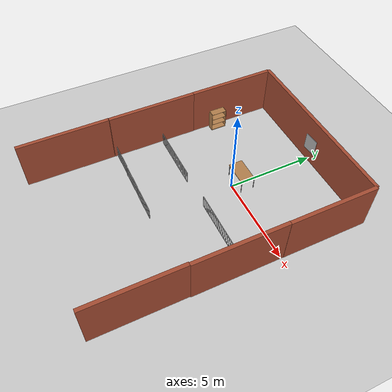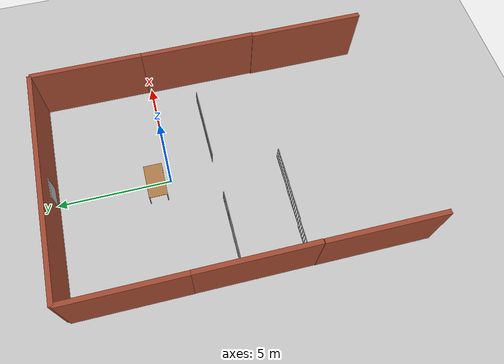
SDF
<sdf version="1.7">
 <world name="default">
  <light name="sun" type="directional">
   <pose>0 0 10 0 -0 0</pose>
   <diffuse>0.8 0.8 0.8 1</diffuse>
   <specular>0.2 0.2 0.2 1</specular>
   <attenuation>
    <range>1000</range>
    <constant>0.9</constant>
    <linear>0.01</linear>
    <quadratic>0.001</quadratic>
   </attenuation>
   <direction>-0.5 0.1 -0.9</direction>
   <spot><inner_angle>0</inner_angle><outer_angle>0</outer_angle><falloff>0</falloff></spot>
  </light>
  <model name="ground_plane">
   <static>1</static>
   <link name="link">
    <collision name="collision">
     <geometry><plane><normal>0 0 1</normal><size>100 100</size></plane></geometry>
     <surface>
      <contact><collide_bitmask>65535</collide_bitmask></contact>
      <friction><ode><mu>100</mu><mu2>50</mu2></ode></friction>
     </surface>
    </collision>
    <visual name="visual">
     <cast_shadows>0</cast_shadows>
     <geometry><plane><normal>0 0 1</normal><size>100 100</size></plane></geometry>
     <material>
      <script><uri>file://media/materials/scripts/gazebo.material</uri><name>Gazebo/Grey</name></script>
     </material>
    </visual>
   </link>
  </model>
  <gravity>0 0 -9.8</gravity>
  <magnetic_field>6e-06 2.3e-05 -4.2e-05</magnetic_field>
  <atmosphere type="adiabatic"/>
  <physics name="default_physics" default="0" type="ode">
   <max_step_size>0.001</max_step_size>
   <real_time_factor>1</real_time_factor>
   <real_time_update_rate>1000</real_time_update_rate>
  </physics>
  <scene><ambient>0.4 0.4 0.4 1</ambient><background>0.7 0.7 0.7 1</background><shadows>1</shadows></scene>
  <audio><device>default</device></audio>
  <spherical_coordinates>
   <surface_model>EARTH_WGS84</surface_model>
   <latitude_deg>0</latitude_deg>
   <longitude_deg>0</longitude_deg>
   <elevation>0</elevation>
   <heading_deg>0</heading_deg>
  </spherical_coordinates>
  <model name="table_clone">
   <static>1</static>
   <link name="link">
    <collision name="surface">
     <pose>0 0 1 0 -0 0</pose>
     <geometry><box><size>1.5 0.8 0.03</size></box></geometry>
     <surface><friction><ode><mu>0.6</mu><mu2>0.6</mu2></ode></friction></surface>
    </collision>
    <visual name="visual1">
     <pose>0 0 1 0 -0 0</pose>
     <geometry><box><size>1.5 0.8 0.03</size></box></geometry>
     <material>
      <script><uri>file://media/materials/scripts/gazebo.material</uri><name>Gazebo/Wood</name></script>
     </material>
    </visual>
    <collision name="front_left_leg">
     <pose>0.68 0.38 0.5 0 -0 0</pose>
     <geometry><cylinder><radius>0.02</radius><length>1</length></cylinder></geometry>
    </collision>
    <visual name="front_left_leg">
     <pose>0.68 0.38 0.5 0 -0 0</pose>
     <geometry><cylinder><radius>0.02</radius><length>1</length></cylinder></geometry>
     <material>
      <script><uri>file://media/materials/scripts/gazebo.material</uri><name>Gazebo/Grey</name></script>
     </material>
    </visual>
    <collision name="front_right_leg">
     <pose>0.68 -0.38 0.5 0 -0 0</pose>
     <geometry><cylinder><radius>0.02</radius><length>1</length></cylinder></geometry>
    </collision>
    <visual name="front_right_leg">
     <pose>0.68 -0.38 0.5 0 -0 0</pose>
     <geometry><cylinder><radius>0.02</radius><length>1</length></cylinder></geometry>
     <material>
      <script><uri>file://media/materials/scripts/gazebo.material</uri><name>Gazebo/Grey</name></script>
     </material>
    </visual>
    <collision name="back_right_leg">
     <pose>-0.68 -0.38 0.5 0 -0 0</pose>
     <geometry><cylinder><radius>0.02</radius><length>1</length></cylinder></geometry>
    </collision>
    <visual name="back_right_leg">
     <pose>-0.68 -0.38 0.5 0 -0 0</pose>
     <geometry><cylinder><radius>0.02</radius><length>1</length></cylinder></geometry>
     <material>
      <script><uri>file://media/materials/scripts/gazebo.material</uri><name>Gazebo/Grey</name></script>
     </material>
    </visual>
    <collision name="back_left_leg">
     <pose>-0.68 0.38 0.5 0 -0 0</pose>
     <geometry><cylinder><radius>0.02</radius><length>1</length></cylinder></geometry>
    </collision>
    <visual name="back_left_leg">
     <pose>-0.68 0.38 0.5 0 -0 0</pose>
     <geometry><cylinder><radius>0.02</radius><length>1</length></cylinder></geometry>
     <material>
      <script><uri>file://media/materials/scripts/gazebo.material</uri><name>Gazebo/Grey</name></script>
     </material>
    </visual>
   </link>
   <pose>-0.109742 0.658904 -0.245542 0 -0 0</pose>
  </model>
  <model name="parede_norte">
   <static>1</static>
   <pose>0 5 1.4 0 -0 0</pose>
   <link name="link">
    <collision name="collision"><geometry><box><size>10 0.2 2.8</size></box></geometry></collision>
    <visual name="visual">
     <geometry><box><size>10 0.2 2.8</size></box></geometry>
     <material>
      <script><uri>file://media/materials/scripts/gazebo.material</uri><name>Gazebo/Bricks</name></script>
     </material>
    </visual>
   </link>
  </model>
  <model name="parede_leste">
   <static>1</static>
   <pose>5.00025 2.56159 1.4 0 -0 1.5707</pose>
   <link name="link">
    <collision name="collision"><geometry><box><size>4.86735 0.2 2.8</size></box></geometry></collision>
    <visual name="visual">
     <geometry><box><size>4.86735 0.2 2.8</size></box></geometry>
     <material>
      <script><uri>file://media/materials/scripts/gazebo.material</uri><name>Gazebo/Bricks</name></script>
     </material>
    </visual>
   </link>
  </model>
  <model name="parede_oeste">
   <static>1</static>
   <pose>-4.96357 2.50093 1.4 0 -0 1.5707</pose>
   <link name="link">
    <collision name="collision"><geometry><box><size>4.96352 0.2 2.8</size></box></geometry></collision>
    <visual name="visual">
     <geometry><box><size>4.96352 0.2 2.8</size></box></geometry>
     <material>
      <script><uri>file://media/materials/scripts/gazebo.material</uri><name>Gazebo/Bricks</name></script>
     </material>
    </visual>
   </link>
  </model>
  <model name="prateleira_1">
   <static>1</static>
   <link name="link">
    <inertial><mass>1</mass></inertial>
    <collision name="back">
     <pose>0 0.005 0.6 0 -0 0</pose>
     <geometry><box><size>0.9 0.01 1.2</size></box></geometry>
    </collision>
    <visual name="visual1">
     <pose>0 0.005 0.6 0 -0 0</pose>
     <geometry><box><size>0.9 0.01 1.2</size></box></geometry>
     <material>
      <script><uri>file://media/materials/scripts/gazebo.material</uri><name>Gazebo/Wood</name></script>
     </material>
    </visual>
    <collision name="left_side">
     <pose>0.45 -0.195 0.6 0 -0 0</pose>
     <geometry><box><size>0.02 0.4 1.2</size></box></geometry>
    </collision>
    <visual name="visual2">
     <pose>0.45 -0.195 0.6 0 -0 0</pose>
     <geometry><box><size>0.02 0.4 1.2</size></box></geometry>
     <material>
      <script><uri>file://media/materials/scripts/gazebo.material</uri><name>Gazebo/Wood</name></script>
     </material>
    </visual>
    <collision name="right_side">
     <pose>-0.45 -0.195 0.6 0 -0 0</pose>
     <geometry><box><size>0.02 0.4 1.2</size></box></geometry>
    </collision>
    <visual name="visual3">
     <pose>-0.45 -0.195 0.6 0 -0 0</pose>
     <geometry><box><size>0.02 0.4 1.2</size></box></geometry>
     <material>
      <script><uri>file://media/materials/scripts/gazebo.material</uri><name>Gazebo/Wood</name></script>
     </material>
    </visual>
    <collision name="bottom">
     <pose>0 -0.195 0.03 0 -0 0</pose>
     <geometry><box><size>0.88 0.4 0.06</size></box></geometry>
    </collision>
    <visual name="visual4">
     <pose>0 -0.195 0.03 0 -0 0</pose>
     <geometry><box><size>0.88 0.4 0.06</size></box></geometry>
     <material>
      <script><uri>file://media/materials/scripts/gazebo.material</uri><name>Gazebo/Wood</name></script>
     </material>
    </visual>
    <collision name="top">
     <pose>0 -0.195 1.19 0 -0 0</pose>
     <geometry><box><size>0.88 0.4 0.02</size></box></geometry>
    </collision>
    <visual name="visual5">
     <pose>0 -0.195 1.19 0 -0 0</pose>
     <geometry><box><size>0.88 0.4 0.02</size></box></geometry>
     <material>
      <script><uri>file://media/materials/scripts/gazebo.material</uri><name>Gazebo/Wood</name></script>
     </material>
    </visual>
    <collision name="low_shelf">
     <pose>0 -0.195 0.43 0 -0 0</pose>
     <geometry><box><size>0.88 0.4 0.02</size></box></geometry>
    </collision>
    <visual name="visual6">
     <pose>0 -0.195 0.43 0 -0 0</pose>
     <geometry><box><size>0.88 0.4 0.02</size></box></geometry>
     <material>
      <script><uri>file://media/materials/scripts/gazebo.material</uri><name>Gazebo/Wood</name></script>
     </material>
    </visual>
    <collision name="high_shelf">
     <pose>0 -0.195 0.8 0 -0 0</pose>
     <geometry><box><size>0.88 0.4 0.02</size></box></geometry>
    </collision>
    <visual name="visual7">
     <pose>0 -0.195 0.8 0 -0 0</pose>
     <geometry><box><size>0.88 0.4 0.02</size></box></geometry>
     <material>
      <script><uri>file://media/materials/scripts/gazebo.material</uri><name>Gazebo/Wood</name></script>
     </material>
    </visual>
   </link>
   <pose>-4.80879 1.50006 0 0 -0 1.5707</pose>
  </model>
  <model name="makerspet_poster">
   <link name="link">
    <visual name="visual">
     <geometry><box><size>0.03 0.85714 1</size></box></geometry>
     <material>
      <script>
       <uri>https://fuel.ignitionrobotics.org/1.0/makerspet/models/makerspet_poster/1/files/material/script</uri>
       <uri>https://fuel.ignitionrobotics.org/1.0/makerspet/models/makerspet_poster/1/files/material/textures</uri>
       <name>Custom/makerspet</name>
      </script>
     </material>
    </visual>
   </link>
   <static>1</static>
   <pose>0.091416 4.86078 1.23081 0 0 -1.51214</pose>
  </model>
  <model name="pet_gate_wide">
   <static>1</static>
   <link name="link">
    <collision name="bar1_collision">
     <pose>0 0 0.381 0 -0 0</pose>
     <geometry><box><size>0.0254 0.0254 0.7366</size></box></geometry>
    </collision>
    <visual name="bar1_visual">
     <pose>0 0 0.381 0 -0 0</pose>
     <geometry><box><size>0.0254 0.0254 0.7366</size></box></geometry>
     <material>
      <script><uri>file://media/materials/scripts/gazebo.material</uri><name>Gazebo/Grey</name></script>
     </material>
    </visual>
    <collision name="bar2_collision">
     <pose>0.1651 0 0.381 0 -0 0</pose>
     <geometry><box><size>0.0254 0.0254 0.7366</size></box></geometry>
    </collision>
    <visual name="bar2_visual">
     <pose>0.1651 0 0.381 0 -0 0</pose>
     <geometry><box><size>0.0254 0.0254 0.7366</size></box></geometry>
     <material>
      <script><uri>file://media/materials/scripts/gazebo.material</uri><name>Gazebo/Grey</name></script>
     </material>
    </visual>
    <collision name="bar3_collision">
     <pose>0.3302 0 0.381 0 -0 0</pose>
     <geometry><box><size>0.0254 0.0254 0.7366</size></box></geometry>
    </collision>
    <visual name="bar3_visual">
     <pose>0.3302 0 0.381 0 -0 0</pose>
     <geometry><box><size>0.0254 0.0254 0.7366</size></box></geometry>
     <material>
      <script><uri>file://media/materials/scripts/gazebo.material</uri><name>Gazebo/Grey</name></script>
     </material>
    </visual>
    <collision name="bar4_collision">
     <pose>0.4953 0 0.381 0 -0 0</pose>
     <geometry><box><size>0.0254 0.0254 0.7366</size></box></geometry>
    </collision>
    <visual name="bar4_visual">
     <pose>0.4953 0 0.381 0 -0 0</pose>
     <geometry><box><size>0.0254 0.0254 0.7366</size></box></geometry>
     <material>
      <script><uri>file://media/materials/scripts/gazebo.material</uri><name>Gazebo/Grey</name></script>
     </material>
    </visual>
    <collision name="bar5_collision">
     <pose>0.6604 0 0.381 0 -0 0</pose>
     <geometry><box><size>0.0254 0.0254 0.7366</size></box></geometry>
    </collision>
    <visual name="bar5_visual">
     <pose>0.6604 0 0.381 0 -0 0</pose>
     <geometry><box><size>0.0254 0.0254 0.7366</size></box></geometry>
     <material>
      <script><uri>file://media/materials/scripts/gazebo.material</uri><name>Gazebo/Grey</name></script>
     </material>
    </visual>
    <collision name="bar6_collision">
     <pose>0.8255 0 0.381 0 -0 0</pose>
     <geometry><box><size>0.0254 0.0254 0.7366</size></box></geometry>
    </collision>
    <visual name="bar6_visual">
     <pose>0.8255 0 0.381 0 -0 0</pose>
     <geometry><box><size>0.0254 0.0254 0.7366</size></box></geometry>
     <material>
      <script><uri>file://media/materials/scripts/gazebo.material</uri><name>Gazebo/Grey</name></script>
     </material>
    </visual>
    <collision name="bar7_collision">
     <pose>0.9906 0 0.381 0 -0 0</pose>
     <geometry><box><size>0.0254 0.0254 0.7366</size></box></geometry>
    </collision>
    <visual name="bar7_visual">
     <pose>0.9906 0 0.381 0 -0 0</pose>
     <geometry><box><size>0.0254 0.0254 0.7366</size></box></geometry>
     <material>
      <script><uri>file://media/materials/scripts/gazebo.material</uri><name>Gazebo/Grey</name></script>
     </material>
    </visual>
    <collision name="bar8_collision">
     <pose>1.1557 0 0.381 0 -0 0</pose>
     <geometry><box><size>0.0254 0.0254 0.7366</size></box></geometry>
    </collision>
    <visual name="bar8_visual">
     <pose>1.1557 0 0.381 0 -0 0</pose>
     <geometry><box><size>0.0254 0.0254 0.7366</size></box></geometry>
     <material>
      <script><uri>file://media/materials/scripts/gazebo.material</uri><name>Gazebo/Grey</name></script>
     </material>
    </visual>
    <collision name="bar9_collision">
     <pose>1.3208 0 0.381 0 -0 0</pose>
     <geometry><box><size>0.0254 0.0254 0.7366</size></box></geometry>
    </collision>
    <visual name="bar9_visual">
     <pose>1.3208 0 0.381 0 -0 0</pose>
     <geometry><box><size>0.0254 0.0254 0.7366</size></box></geometry>
     <material>
      <script><uri>file://media/materials/scripts/gazebo.material</uri><name>Gazebo/Grey</name></script>
     </material>
    </visual>
    <collision name="bar10_collision">
     <pose>1.4859 0 0.381 0 -0 0</pose>
     <geometry><box><size>0.0254 0.0254 0.7366</size></box></geometry>
    </collision>
    <visual name="bar10_visual">
     <pose>1.4859 0 0.381 0 -0 0</pose>
     <geometry><box><size>0.0254 0.0254 0.7366</size></box></geometry>
     <material>
      <script><uri>file://media/materials/scripts/gazebo.material</uri><name>Gazebo/Grey</name></script>
     </material>
    </visual>
    <collision name="bar11_collision">
     <pose>1.651 0 0.381 0 -0 0</pose>
     <geometry><box><size>0.0254 0.0254 0.7366</size></box></geometry>
    </collision>
    <visual name="bar11_visual">
     <pose>1.651 0 0.381 0 -0 0</pose>
     <geometry><box><size>0.0254 0.0254 0.7366</size></box></geometry>
     <material>
      <script><uri>file://media/materials/scripts/gazebo.material</uri><name>Gazebo/Grey</name></script>
     </material>
    </visual>
    <collision name="top_rail_collision">
     <pose>0.8255 0 0.7493 0 -0 0</pose>
     <geometry><box><size>1.6764 0.0254 0.0254</size></box></geometry>
    </collision>
    <visual name="top_rail_visual">
     <pose>0.8255 0 0.7493 0 -0 0</pose>
     <geometry><box><size>1.6764 0.0254 0.0254</size></box></geometry>
     <material>
      <script><uri>file://media/materials/scripts/gazebo.material</uri><name>Gazebo/Grey</name></script>
     </material>
    </visual>
    <collision name="bottom_rail_collision">
     <pose>0.8255 0 0.0127 0 -0 0</pose>
     <geometry><box><size>1.6764 0.0254 0.0254</size></box></geometry>
    </collision>
    <visual name="bottom_rail_visual">
     <pose>0.8255 0 0.0127 0 -0 0</pose>
     <geometry><box><size>1.6764 0.0254 0.0254</size></box></geometry>
     <material>
      <script><uri>file://media/materials/scripts/gazebo.material</uri><name>Gazebo/Grey</name></script>
     </material>
    </visual>
   </link>
   <pose>-4.8961 -4.83545 0 0 -0 0</pose>
  </model>
  <model name="pet_gate_wide_clone">
   <static>1</static>
   <link name="link">
    <collision name="bar1_collision">
     <pose>0 0 0.381 0 -0 0</pose>
     <geometry><box><size>0.0254 0.0254 0.7366</size></box></geometry>
    </collision>
    <visual name="bar1_visual">
     <pose>0 0 0.381 0 -0 0</pose>
     <geometry><box><size>0.0254 0.0254 0.7366</size></box></geometry>
     <material>
      <script><uri>file://media/materials/scripts/gazebo.material</uri><name>Gazebo/Grey</name></script>
     </material>
    </visual>
    <collision name="bar2_collision">
     <pose>0.1651 0 0.381 0 -0 0</pose>
     <geometry><box><size>0.0254 0.0254 0.7366</size></box></geometry>
    </collision>
    <visual name="bar2_visual">
     <pose>0.1651 0 0.381 0 -0 0</pose>
     <geometry><box><size>0.0254 0.0254 0.7366</size></box></geometry>
     <material>
      <script><uri>file://media/materials/scripts/gazebo.material</uri><name>Gazebo/Grey</name></script>
     </material>
    </visual>
    <collision name="bar3_collision">
     <pose>0.3302 0 0.381 0 -0 0</pose>
     <geometry><box><size>0.0254 0.0254 0.7366</size></box></geometry>
    </collision>
    <visual name="bar3_visual">
     <pose>0.3302 0 0.381 0 -0 0</pose>
     <geometry><box><size>0.0254 0.0254 0.7366</size></box></geometry>
     <material>
      <script><uri>file://media/materials/scripts/gazebo.material</uri><name>Gazebo/Grey</name></script>
     </material>
    </visual>
    <collision name="bar4_collision">
     <pose>0.4953 0 0.381 0 -0 0</pose>
     <geometry><box><size>0.0254 0.0254 0.7366</size></box></geometry>
    </collision>
    <visual name="bar4_visual">
     <pose>0.4953 0 0.381 0 -0 0</pose>
     <geometry><box><size>0.0254 0.0254 0.7366</size></box></geometry>
     <material>
      <script><uri>file://media/materials/scripts/gazebo.material</uri><name>Gazebo/Grey</name></script>
     </material>
    </visual>
    <collision name="bar5_collision">
     <pose>0.6604 0 0.381 0 -0 0</pose>
     <geometry><box><size>0.0254 0.0254 0.7366</size></box></geometry>
    </collision>
    <visual name="bar5_visual">
     <pose>0.6604 0 0.381 0 -0 0</pose>
     <geometry><box><size>0.0254 0.0254 0.7366</size></box></geometry>
     <material>
      <script><uri>file://media/materials/scripts/gazebo.material</uri><name>Gazebo/Grey</name></script>
     </material>
    </visual>
    <collision name="bar6_collision">
     <pose>0.8255 0 0.381 0 -0 0</pose>
     <geometry><box><size>0.0254 0.0254 0.7366</size></box></geometry>
    </collision>
    <visual name="bar6_visual">
     <pose>0.8255 0 0.381 0 -0 0</pose>
     <geometry><box><size>0.0254 0.0254 0.7366</size></box></geometry>
     <material>
      <script><uri>file://media/materials/scripts/gazebo.material</uri><name>Gazebo/Grey</name></script>
     </material>
    </visual>
    <collision name="bar7_collision">
     <pose>0.9906 0 0.381 0 -0 0</pose>
     <geometry><box><size>0.0254 0.0254 0.7366</size></box></geometry>
    </collision>
    <visual name="bar7_visual">
     <pose>0.9906 0 0.381 0 -0 0</pose>
     <geometry><box><size>0.0254 0.0254 0.7366</size></box></geometry>
     <material>
      <script><uri>file://media/materials/scripts/gazebo.material</uri><name>Gazebo/Grey</name></script>
     </material>
    </visual>
    <collision name="bar8_collision">
     <pose>1.1557 0 0.381 0 -0 0</pose>
     <geometry><box><size>0.0254 0.0254 0.7366</size></box></geometry>
    </collision>
    <visual name="bar8_visual">
     <pose>1.1557 0 0.381 0 -0 0</pose>
     <geometry><box><size>0.0254 0.0254 0.7366</size></box></geometry>
     <material>
      <script><uri>file://media/materials/scripts/gazebo.material</uri><name>Gazebo/Grey</name></script>
     </material>
    </visual>
    <collision name="bar9_collision">
     <pose>1.3208 0 0.381 0 -0 0</pose>
     <geometry><box><size>0.0254 0.0254 0.7366</size></box></geometry>
    </collision>
    <visual name="bar9_visual">
     <pose>1.3208 0 0.381 0 -0 0</pose>
     <geometry><box><size>0.0254 0.0254 0.7366</size></box></geometry>
     <material>
      <script><uri>file://media/materials/scripts/gazebo.material</uri><name>Gazebo/Grey</name></script>
     </material>
    </visual>
    <collision name="bar10_collision">
     <pose>1.4859 0 0.381 0 -0 0</pose>
     <geometry><box><size>0.0254 0.0254 0.7366</size></box></geometry>
    </collision>
    <visual name="bar10_visual">
     <pose>1.4859 0 0.381 0 -0 0</pose>
     <geometry><box><size>0.0254 0.0254 0.7366</size></box></geometry>
     <material>
      <script><uri>file://media/materials/scripts/gazebo.material</uri><name>Gazebo/Grey</name></script>
     </material>
    </visual>
    <collision name="bar11_collision">
     <pose>1.651 0 0.381 0 -0 0</pose>
     <geometry><box><size>0.0254 0.0254 0.7366</size></box></geometry>
    </collision>
    <visual name="bar11_visual">
     <pose>1.651 0 0.381 0 -0 0</pose>
     <geometry><box><size>0.0254 0.0254 0.7366</size></box></geometry>
     <material>
      <script><uri>file://media/materials/scripts/gazebo.material</uri><name>Gazebo/Grey</name></script>
     </material>
    </visual>
    <collision name="top_rail_collision">
     <pose>0.8255 0 0.7493 0 -0 0</pose>
     <geometry><box><size>1.6764 0.0254 0.0254</size></box></geometry>
    </collision>
    <visual name="top_rail_visual">
     <pose>0.8255 0 0.7493 0 -0 0</pose>
     <geometry><box><size>1.6764 0.0254 0.0254</size></box></geometry>
     <material>
      <script><uri>file://media/materials/scripts/gazebo.material</uri><name>Gazebo/Grey</name></script>
     </material>
    </visual>
    <collision name="bottom_rail_collision">
     <pose>0.8255 0 0.0127 0 -0 0</pose>
     <geometry><box><size>1.6764 0.0254 0.0254</size></box></geometry>
    </collision>
    <visual name="bottom_rail_visual">
     <pose>0.8255 0 0.0127 0 -0 0</pose>
     <geometry><box><size>1.6764 0.0254 0.0254</size></box></geometry>
     <material>
      <script><uri>file://media/materials/scripts/gazebo.material</uri><name>Gazebo/Grey</name></script>
     </material>
    </visual>
   </link>
   <pose>-3.22047 -4.86226 0 0 -0 0</pose>
  </model>
  <model name="pet_gate_wide_clone_clone">
   <static>1</static>
   <link name="link">
    <collision name="bar1_collision">
     <pose>0 0 0.381 0 -0 0</pose>
     <geometry><box><size>0.0254 0.0254 0.7366</size></box></geometry>
    </collision>
    <visual name="bar1_visual">
     <pose>0 0 0.381 0 -0 0</pose>
     <geometry><box><size>0.0254 0.0254 0.7366</size></box></geometry>
     <material>
      <script><uri>file://media/materials/scripts/gazebo.material</uri><name>Gazebo/Grey</name></script>
     </material>
    </visual>
    <collision name="bar2_collision">
     <pose>0.1651 0 0.381 0 -0 0</pose>
     <geometry><box><size>0.0254 0.0254 0.7366</size></box></geometry>
    </collision>
    <visual name="bar2_visual">
     <pose>0.1651 0 0.381 0 -0 0</pose>
     <geometry><box><size>0.0254 0.0254 0.7366</size></box></geometry>
     <material>
      <script><uri>file://media/materials/scripts/gazebo.material</uri><name>Gazebo/Grey</name></script>
     </material>
    </visual>
    <collision name="bar3_collision">
     <pose>0.3302 0 0.381 0 -0 0</pose>
     <geometry><box><size>0.0254 0.0254 0.7366</size></box></geometry>
    </collision>
    <visual name="bar3_visual">
     <pose>0.3302 0 0.381 0 -0 0</pose>
     <geometry><box><size>0.0254 0.0254 0.7366</size></box></geometry>
     <material>
      <script><uri>file://media/materials/scripts/gazebo.material</uri><name>Gazebo/Grey</name></script>
     </material>
    </visual>
    <collision name="bar4_collision">
     <pose>0.4953 0 0.381 0 -0 0</pose>
     <geometry><box><size>0.0254 0.0254 0.7366</size></box></geometry>
    </collision>
    <visual name="bar4_visual">
     <pose>0.4953 0 0.381 0 -0 0</pose>
     <geometry><box><size>0.0254 0.0254 0.7366</size></box></geometry>
     <material>
      <script><uri>file://media/materials/scripts/gazebo.material</uri><name>Gazebo/Grey</name></script>
     </material>
    </visual>
    <collision name="bar5_collision">
     <pose>0.6604 0 0.381 0 -0 0</pose>
     <geometry><box><size>0.0254 0.0254 0.7366</size></box></geometry>
    </collision>
    <visual name="bar5_visual">
     <pose>0.6604 0 0.381 0 -0 0</pose>
     <geometry><box><size>0.0254 0.0254 0.7366</size></box></geometry>
     <material>
      <script><uri>file://media/materials/scripts/gazebo.material</uri><name>Gazebo/Grey</name></script>
     </material>
    </visual>
    <collision name="bar6_collision">
     <pose>0.8255 0 0.381 0 -0 0</pose>
     <geometry><box><size>0.0254 0.0254 0.7366</size></box></geometry>
    </collision>
    <visual name="bar6_visual">
     <pose>0.8255 0 0.381 0 -0 0</pose>
     <geometry><box><size>0.0254 0.0254 0.7366</size></box></geometry>
     <material>
      <script><uri>file://media/materials/scripts/gazebo.material</uri><name>Gazebo/Grey</name></script>
     </material>
    </visual>
    <collision name="bar7_collision">
     <pose>0.9906 0 0.381 0 -0 0</pose>
     <geometry><box><size>0.0254 0.0254 0.7366</size></box></geometry>
    </collision>
    <visual name="bar7_visual">
     <pose>0.9906 0 0.381 0 -0 0</pose>
     <geometry><box><size>0.0254 0.0254 0.7366</size></box></geometry>
     <material>
      <script><uri>file://media/materials/scripts/gazebo.material</uri><name>Gazebo/Grey</name></script>
     </material>
    </visual>
    <collision name="bar8_collision">
     <pose>1.1557 0 0.381 0 -0 0</pose>
     <geometry><box><size>0.0254 0.0254 0.7366</size></box></geometry>
    </collision>
    <visual name="bar8_visual">
     <pose>1.1557 0 0.381 0 -0 0</pose>
     <geometry><box><size>0.0254 0.0254 0.7366</size></box></geometry>
     <material>
      <script><uri>file://media/materials/scripts/gazebo.material</uri><name>Gazebo/Grey</name></script>
     </material>
    </visual>
    <collision name="bar9_collision">
     <pose>1.3208 0 0.381 0 -0 0</pose>
     <geometry><box><size>0.0254 0.0254 0.7366</size></box></geometry>
    </collision>
    <visual name="bar9_visual">
     <pose>1.3208 0 0.381 0 -0 0</pose>
     <geometry><box><size>0.0254 0.0254 0.7366</size></box></geometry>
     <material>
      <script><uri>file://media/materials/scripts/gazebo.material</uri><name>Gazebo/Grey</name></script>
     </material>
    </visual>
    <collision name="bar10_collision">
     <pose>1.4859 0 0.381 0 -0 0</pose>
     <geometry><box><size>0.0254 0.0254 0.7366</size></box></geometry>
    </collision>
    <visual name="bar10_visual">
     <pose>1.4859 0 0.381 0 -0 0</pose>
     <geometry><box><size>0.0254 0.0254 0.7366</size></box></geometry>
     <material>
      <script><uri>file://media/materials/scripts/gazebo.material</uri><name>Gazebo/Grey</name></script>
     </material>
    </visual>
    <collision name="bar11_collision">
     <pose>1.651 0 0.381 0 -0 0</pose>
     <geometry><box><size>0.0254 0.0254 0.7366</size></box></geometry>
    </collision>
    <visual name="bar11_visual">
     <pose>1.651 0 0.381 0 -0 0</pose>
     <geometry><box><size>0.0254 0.0254 0.7366</size></box></geometry>
     <material>
      <script><uri>file://media/materials/scripts/gazebo.material</uri><name>Gazebo/Grey</name></script>
     </material>
    </visual>
    <collision name="top_rail_collision">
     <pose>0.8255 0 0.7493 0 -0 0</pose>
     <geometry><box><size>1.6764 0.0254 0.0254</size></box></geometry>
    </collision>
    <visual name="top_rail_visual">
     <pose>0.8255 0 0.7493 0 -0 0</pose>
     <geometry><box><size>1.6764 0.0254 0.0254</size></box></geometry>
     <material>
      <script><uri>file://media/materials/scripts/gazebo.material</uri><name>Gazebo/Grey</name></script>
     </material>
    </visual>
    <collision name="bottom_rail_collision">
     <pose>0.8255 0 0.0127 0 -0 0</pose>
     <geometry><box><size>1.6764 0.0254 0.0254</size></box></geometry>
    </collision>
    <visual name="bottom_rail_visual">
     <pose>0.8255 0 0.0127 0 -0 0</pose>
     <geometry><box><size>1.6764 0.0254 0.0254</size></box></geometry>
     <material>
      <script><uri>file://media/materials/scripts/gazebo.material</uri><name>Gazebo/Grey</name></script>
     </material>
    </visual>
   </link>
   <pose>-1.54169 -4.87926 0 0 -0 0</pose>
  </model>
  <model name="parede_oeste_clone">
   <static>1</static>
   <pose>-4.95911 -2.48321 1.4 0 -0 1.5707</pose>
   <link name="link">
    <collision name="collision"><geometry><box><size>5.02484 0.2 2.8</size></box></geometry></collision>
    <visual name="visual">
     <geometry><box><size>5.02484 0.2 2.8</size></box></geometry>
     <material>
      <script><uri>file://media/materials/scripts/gazebo.material</uri><name>Gazebo/Bricks</name></script>
     </material>
    </visual>
   </link>
  </model>
  <model name="parede_oeste_clone_0">
   <static>1</static>
   <pose>4.98739 -2.36882 1.4 0 -0 1.5707</pose>
   <link name="link">
    <collision name="collision"><geometry><box><size>5.02484 0.2 2.8</size></box></geometry></collision>
    <visual name="visual">
     <geometry><box><size>5.02484 0.2 2.8</size></box></geometry>
     <material>
      <script><uri>file://media/materials/scripts/gazebo.material</uri><name>Gazebo/Bricks</name></script>
     </material>
    </visual>
   </link>
  </model>
  <model name="parede_oeste_clone_clone">
   <static>1</static>
   <pose>-4.97065 -7.53243 1.4 0 -0 1.5707</pose>
   <link name="link">
    <collision name="collision"><geometry><box><size>5.02484 0.2 2.8</size></box></geometry></collision>
    <visual name="visual">
     <geometry><box><size>5.02484 0.2 2.8</size></box></geometry>
     <material>
      <script><uri>file://media/materials/scripts/gazebo.material</uri><name>Gazebo/Bricks</name></script>
     </material>
    </visual>
   </link>
  </model>
  <model name="parede_oeste_clone_0_clone">
   <static>1</static>
   <pose>4.95048 -7.39368 1.4 0 -0 1.5707</pose>
   <link name="link">
    <collision name="collision"><geometry><box><size>5.02484 0.2 2.8</size></box></geometry></collision>
    <visual name="visual">
     <geometry><box><size>5.02484 0.2 2.8</size></box></geometry>
     <material>
      <script><uri>file://media/materials/scripts/gazebo.material</uri><name>Gazebo/Bricks</name></script>
     </material>
    </visual>
   </link>
  </model>
  <model name="pet_gate_wide_clone_0">
   <static>1</static>
   <link name="link">
    <collision name="bar1_collision">
     <pose>0 0 0.381 0 -0 0</pose>
     <geometry><box><size>0.0254 0.0254 0.7366</size></box></geometry>
    </collision>
    <visual name="bar1_visual">
     <pose>0 0 0.381 0 -0 0</pose>
     <geometry><box><size>0.0254 0.0254 0.7366</size></box></geometry>
     <material>
      <script><uri>file://media/materials/scripts/gazebo.material</uri><name>Gazebo/Grey</name></script>
     </material>
    </visual>
    <collision name="bar2_collision">
     <pose>0.1651 0 0.381 0 -0 0</pose>
     <geometry><box><size>0.0254 0.0254 0.7366</size></box></geometry>
    </collision>
    <visual name="bar2_visual">
     <pose>0.1651 0 0.381 0 -0 0</pose>
     <geometry><box><size>0.0254 0.0254 0.7366</size></box></geometry>
     <material>
      <script><uri>file://media/materials/scripts/gazebo.material</uri><name>Gazebo/Grey</name></script>
     </material>
    </visual>
    <collision name="bar3_collision">
     <pose>0.3302 0 0.381 0 -0 0</pose>
     <geometry><box><size>0.0254 0.0254 0.7366</size></box></geometry>
    </collision>
    <visual name="bar3_visual">
     <pose>0.3302 0 0.381 0 -0 0</pose>
     <geometry><box><size>0.0254 0.0254 0.7366</size></box></geometry>
     <material>
      <script><uri>file://media/materials/scripts/gazebo.material</uri><name>Gazebo/Grey</name></script>
     </material>
    </visual>
    <collision name="bar4_collision">
     <pose>0.4953 0 0.381 0 -0 0</pose>
     <geometry><box><size>0.0254 0.0254 0.7366</size></box></geometry>
    </collision>
    <visual name="bar4_visual">
     <pose>0.4953 0 0.381 0 -0 0</pose>
     <geometry><box><size>0.0254 0.0254 0.7366</size></box></geometry>
     <material>
      <script><uri>file://media/materials/scripts/gazebo.material</uri><name>Gazebo/Grey</name></script>
     </material>
    </visual>
    <collision name="bar5_collision">
     <pose>0.6604 0 0.381 0 -0 0</pose>
     <geometry><box><size>0.0254 0.0254 0.7366</size></box></geometry>
    </collision>
    <visual name="bar5_visual">
     <pose>0.6604 0 0.381 0 -0 0</pose>
     <geometry><box><size>0.0254 0.0254 0.7366</size></box></geometry>
     <material>
      <script><uri>file://media/materials/scripts/gazebo.material</uri><name>Gazebo/Grey</name></script>
     </material>
    </visual>
    <collision name="bar6_collision">
     <pose>0.8255 0 0.381 0 -0 0</pose>
     <geometry><box><size>0.0254 0.0254 0.7366</size></box></geometry>
    </collision>
    <visual name="bar6_visual">
     <pose>0.8255 0 0.381 0 -0 0</pose>
     <geometry><box><size>0.0254 0.0254 0.7366</size></box></geometry>
     <material>
      <script><uri>file://media/materials/scripts/gazebo.material</uri><name>Gazebo/Grey</name></script>
     </material>
    </visual>
    <collision name="bar7_collision">
     <pose>0.9906 0 0.381 0 -0 0</pose>
     <geometry><box><size>0.0254 0.0254 0.7366</size></box></geometry>
    </collision>
    <visual name="bar7_visual">
     <pose>0.9906 0 0.381 0 -0 0</pose>
     <geometry><box><size>0.0254 0.0254 0.7366</size></box></geometry>
     <material>
      <script><uri>file://media/materials/scripts/gazebo.material</uri><name>Gazebo/Grey</name></script>
     </material>
    </visual>
    <collision name="bar8_collision">
     <pose>1.1557 0 0.381 0 -0 0</pose>
     <geometry><box><size>0.0254 0.0254 0.7366</size></box></geometry>
    </collision>
    <visual name="bar8_visual">
     <pose>1.1557 0 0.381 0 -0 0</pose>
     <geometry><box><size>0.0254 0.0254 0.7366</size></box></geometry>
     <material>
      <script><uri>file://media/materials/scripts/gazebo.material</uri><name>Gazebo/Grey</name></script>
     </material>
    </visual>
    <collision name="bar9_collision">
     <pose>1.3208 0 0.381 0 -0 0</pose>
     <geometry><box><size>0.0254 0.0254 0.7366</size></box></geometry>
    </collision>
    <visual name="bar9_visual">
     <pose>1.3208 0 0.381 0 -0 0</pose>
     <geometry><box><size>0.0254 0.0254 0.7366</size></box></geometry>
     <material>
      <script><uri>file://media/materials/scripts/gazebo.material</uri><name>Gazebo/Grey</name></script>
     </material>
    </visual>
    <collision name="bar10_collision">
     <pose>1.4859 0 0.381 0 -0 0</pose>
     <geometry><box><size>0.0254 0.0254 0.7366</size></box></geometry>
    </collision>
    <visual name="bar10_visual">
     <pose>1.4859 0 0.381 0 -0 0</pose>
     <geometry><box><size>0.0254 0.0254 0.7366</size></box></geometry>
     <material>
      <script><uri>file://media/materials/scripts/gazebo.material</uri><name>Gazebo/Grey</name></script>
     </material>
    </visual>
    <collision name="bar11_collision">
     <pose>1.651 0 0.381 0 -0 0</pose>
     <geometry><box><size>0.0254 0.0254 0.7366</size></box></geometry>
    </collision>
    <visual name="bar11_visual">
     <pose>1.651 0 0.381 0 -0 0</pose>
     <geometry><box><size>0.0254 0.0254 0.7366</size></box></geometry>
     <material>
      <script><uri>file://media/materials/scripts/gazebo.material</uri><name>Gazebo/Grey</name></script>
     </material>
    </visual>
    <collision name="top_rail_collision">
     <pose>0.8255 0 0.7493 0 -0 0</pose>
     <geometry><box><size>1.6764 0.0254 0.0254</size></box></geometry>
    </collision>
    <visual name="top_rail_visual">
     <pose>0.8255 0 0.7493 0 -0 0</pose>
     <geometry><box><size>1.6764 0.0254 0.0254</size></box></geometry>
     <material>
      <script><uri>file://media/materials/scripts/gazebo.material</uri><name>Gazebo/Grey</name></script>
     </material>
    </visual>
    <collision name="bottom_rail_collision">
     <pose>0.8255 0 0.0127 0 -0 0</pose>
     <geometry><box><size>1.6764 0.0254 0.0254</size></box></geometry>
    </collision>
    <visual name="bottom_rail_visual">
     <pose>0.8255 0 0.0127 0 -0 0</pose>
     <geometry><box><size>1.6764 0.0254 0.0254</size></box></geometry>
     <material>
      <script><uri>file://media/materials/scripts/gazebo.material</uri><name>Gazebo/Grey</name></script>
     </material>
    </visual>
   </link>
   <pose>-4.66801 -2.05183 0 0 -0 0</pose>
  </model>
  <model name="pet_gate_wide_clone_1">
   <static>1</static>
   <link name="link">
    <collision name="bar1_collision">
     <pose>0 0 0.381 0 -0 0</pose>
     <geometry><box><size>0.0254 0.0254 0.7366</size></box></geometry>
    </collision>
    <visual name="bar1_visual">
     <pose>0 0 0.381 0 -0 0</pose>
     <geometry><box><size>0.0254 0.0254 0.7366</size></box></geometry>
     <material>
      <script><uri>file://media/materials/scripts/gazebo.material</uri><name>Gazebo/Grey</name></script>
     </material>
    </visual>
    <collision name="bar2_collision">
     <pose>0.1651 0 0.381 0 -0 0</pose>
     <geometry><box><size>0.0254 0.0254 0.7366</size></box></geometry>
    </collision>
    <visual name="bar2_visual">
     <pose>0.1651 0 0.381 0 -0 0</pose>
     <geometry><box><size>0.0254 0.0254 0.7366</size></box></geometry>
     <material>
      <script><uri>file://media/materials/scripts/gazebo.material</uri><name>Gazebo/Grey</name></script>
     </material>
    </visual>
    <collision name="bar3_collision">
     <pose>0.3302 0 0.381 0 -0 0</pose>
     <geometry><box><size>0.0254 0.0254 0.7366</size></box></geometry>
    </collision>
    <visual name="bar3_visual">
     <pose>0.3302 0 0.381 0 -0 0</pose>
     <geometry><box><size>0.0254 0.0254 0.7366</size></box></geometry>
     <material>
      <script><uri>file://media/materials/scripts/gazebo.material</uri><name>Gazebo/Grey</name></script>
     </material>
    </visual>
    <collision name="bar4_collision">
     <pose>0.4953 0 0.381 0 -0 0</pose>
     <geometry><box><size>0.0254 0.0254 0.7366</size></box></geometry>
    </collision>
    <visual name="bar4_visual">
     <pose>0.4953 0 0.381 0 -0 0</pose>
     <geometry><box><size>0.0254 0.0254 0.7366</size></box></geometry>
     <material>
      <script><uri>file://media/materials/scripts/gazebo.material</uri><name>Gazebo/Grey</name></script>
     </material>
    </visual>
    <collision name="bar5_collision">
     <pose>0.6604 0 0.381 0 -0 0</pose>
     <geometry><box><size>0.0254 0.0254 0.7366</size></box></geometry>
    </collision>
    <visual name="bar5_visual">
     <pose>0.6604 0 0.381 0 -0 0</pose>
     <geometry><box><size>0.0254 0.0254 0.7366</size></box></geometry>
     <material>
      <script><uri>file://media/materials/scripts/gazebo.material</uri><name>Gazebo/Grey</name></script>
     </material>
    </visual>
    <collision name="bar6_collision">
     <pose>0.8255 0 0.381 0 -0 0</pose>
     <geometry><box><size>0.0254 0.0254 0.7366</size></box></geometry>
    </collision>
    <visual name="bar6_visual">
     <pose>0.8255 0 0.381 0 -0 0</pose>
     <geometry><box><size>0.0254 0.0254 0.7366</size></box></geometry>
     <material>
      <script><uri>file://media/materials/scripts/gazebo.material</uri><name>Gazebo/Grey</name></script>
     </material>
    </visual>
    <collision name="bar7_collision">
     <pose>0.9906 0 0.381 0 -0 0</pose>
     <geometry><box><size>0.0254 0.0254 0.7366</size></box></geometry>
    </collision>
    <visual name="bar7_visual">
     <pose>0.9906 0 0.381 0 -0 0</pose>
     <geometry><box><size>0.0254 0.0254 0.7366</size></box></geometry>
     <material>
      <script><uri>file://media/materials/scripts/gazebo.material</uri><name>Gazebo/Grey</name></script>
     </material>
    </visual>
    <collision name="bar8_collision">
     <pose>1.1557 0 0.381 0 -0 0</pose>
     <geometry><box><size>0.0254 0.0254 0.7366</size></box></geometry>
    </collision>
    <visual name="bar8_visual">
     <pose>1.1557 0 0.381 0 -0 0</pose>
     <geometry><box><size>0.0254 0.0254 0.7366</size></box></geometry>
     <material>
      <script><uri>file://media/materials/scripts/gazebo.material</uri><name>Gazebo/Grey</name></script>
     </material>
    </visual>
    <collision name="bar9_collision">
     <pose>1.3208 0 0.381 0 -0 0</pose>
     <geometry><box><size>0.0254 0.0254 0.7366</size></box></geometry>
    </collision>
    <visual name="bar9_visual">
     <pose>1.3208 0 0.381 0 -0 0</pose>
     <geometry><box><size>0.0254 0.0254 0.7366</size></box></geometry>
     <material>
      <script><uri>file://media/materials/scripts/gazebo.material</uri><name>Gazebo/Grey</name></script>
     </material>
    </visual>
    <collision name="bar10_collision">
     <pose>1.4859 0 0.381 0 -0 0</pose>
     <geometry><box><size>0.0254 0.0254 0.7366</size></box></geometry>
    </collision>
    <visual name="bar10_visual">
     <pose>1.4859 0 0.381 0 -0 0</pose>
     <geometry><box><size>0.0254 0.0254 0.7366</size></box></geometry>
     <material>
      <script><uri>file://media/materials/scripts/gazebo.material</uri><name>Gazebo/Grey</name></script>
     </material>
    </visual>
    <collision name="bar11_collision">
     <pose>1.651 0 0.381 0 -0 0</pose>
     <geometry><box><size>0.0254 0.0254 0.7366</size></box></geometry>
    </collision>
    <visual name="bar11_visual">
     <pose>1.651 0 0.381 0 -0 0</pose>
     <geometry><box><size>0.0254 0.0254 0.7366</size></box></geometry>
     <material>
      <script><uri>file://media/materials/scripts/gazebo.material</uri><name>Gazebo/Grey</name></script>
     </material>
    </visual>
    <collision name="top_rail_collision">
     <pose>0.8255 0 0.7493 0 -0 0</pose>
     <geometry><box><size>1.6764 0.0254 0.0254</size></box></geometry>
    </collision>
    <visual name="top_rail_visual">
     <pose>0.8255 0 0.7493 0 -0 0</pose>
     <geometry><box><size>1.6764 0.0254 0.0254</size></box></geometry>
     <material>
      <script><uri>file://media/materials/scripts/gazebo.material</uri><name>Gazebo/Grey</name></script>
     </material>
    </visual>
    <collision name="bottom_rail_collision">
     <pose>0.8255 0 0.0127 0 -0 0</pose>
     <geometry><box><size>1.6764 0.0254 0.0254</size></box></geometry>
    </collision>
    <visual name="bottom_rail_visual">
     <pose>0.8255 0 0.0127 0 -0 0</pose>
     <geometry><box><size>1.6764 0.0254 0.0254</size></box></geometry>
     <material>
      <script><uri>file://media/materials/scripts/gazebo.material</uri><name>Gazebo/Grey</name></script>
     </material>
    </visual>
   </link>
   <pose>-2.97894 -2.05734 0 0 -0 0</pose>
  </model>
  <model name="pet_gate_wide_clone_2">
   <static>1</static>
   <link name="link">
    <collision name="bar1_collision">
     <pose>0 0 0.381 0 -0 0</pose>
     <geometry><box><size>0.0254 0.0254 0.7366</size></box></geometry>
    </collision>
    <visual name="bar1_visual">
     <pose>0 0 0.381 0 -0 0</pose>
     <geometry><box><size>0.0254 0.0254 0.7366</size></box></geometry>
     <material>
      <script><uri>file://media/materials/scripts/gazebo.material</uri><name>Gazebo/Grey</name></script>
     </material>
    </visual>
    <collision name="bar2_collision">
     <pose>0.1651 0 0.381 0 -0 0</pose>
     <geometry><box><size>0.0254 0.0254 0.7366</size></box></geometry>
    </collision>
    <visual name="bar2_visual">
     <pose>0.1651 0 0.381 0 -0 0</pose>
     <geometry><box><size>0.0254 0.0254 0.7366</size></box></geometry>
     <material>
      <script><uri>file://media/materials/scripts/gazebo.material</uri><name>Gazebo/Grey</name></script>
     </material>
    </visual>
    <collision name="bar3_collision">
     <pose>0.3302 0 0.381 0 -0 0</pose>
     <geometry><box><size>0.0254 0.0254 0.7366</size></box></geometry>
    </collision>
    <visual name="bar3_visual">
     <pose>0.3302 0 0.381 0 -0 0</pose>
     <geometry><box><size>0.0254 0.0254 0.7366</size></box></geometry>
     <material>
      <script><uri>file://media/materials/scripts/gazebo.material</uri><name>Gazebo/Grey</name></script>
     </material>
    </visual>
    <collision name="bar4_collision">
     <pose>0.4953 0 0.381 0 -0 0</pose>
     <geometry><box><size>0.0254 0.0254 0.7366</size></box></geometry>
    </collision>
    <visual name="bar4_visual">
     <pose>0.4953 0 0.381 0 -0 0</pose>
     <geometry><box><size>0.0254 0.0254 0.7366</size></box></geometry>
     <material>
      <script><uri>file://media/materials/scripts/gazebo.material</uri><name>Gazebo/Grey</name></script>
     </material>
    </visual>
    <collision name="bar5_collision">
     <pose>0.6604 0 0.381 0 -0 0</pose>
     <geometry><box><size>0.0254 0.0254 0.7366</size></box></geometry>
    </collision>
    <visual name="bar5_visual">
     <pose>0.6604 0 0.381 0 -0 0</pose>
     <geometry><box><size>0.0254 0.0254 0.7366</size></box></geometry>
     <material>
      <script><uri>file://media/materials/scripts/gazebo.material</uri><name>Gazebo/Grey</name></script>
     </material>
    </visual>
    <collision name="bar6_collision">
     <pose>0.8255 0 0.381 0 -0 0</pose>
     <geometry><box><size>0.0254 0.0254 0.7366</size></box></geometry>
    </collision>
    <visual name="bar6_visual">
     <pose>0.8255 0 0.381 0 -0 0</pose>
     <geometry><box><size>0.0254 0.0254 0.7366</size></box></geometry>
     <material>
      <script><uri>file://media/materials/scripts/gazebo.material</uri><name>Gazebo/Grey</name></script>
     </material>
    </visual>
    <collision name="bar7_collision">
     <pose>0.9906 0 0.381 0 -0 0</pose>
     <geometry><box><size>0.0254 0.0254 0.7366</size></box></geometry>
    </collision>
    <visual name="bar7_visual">
     <pose>0.9906 0 0.381 0 -0 0</pose>
     <geometry><box><size>0.0254 0.0254 0.7366</size></box></geometry>
     <material>
      <script><uri>file://media/materials/scripts/gazebo.material</uri><name>Gazebo/Grey</name></script>
     </material>
    </visual>
    <collision name="bar8_collision">
     <pose>1.1557 0 0.381 0 -0 0</pose>
     <geometry><box><size>0.0254 0.0254 0.7366</size></box></geometry>
    </collision>
    <visual name="bar8_visual">
     <pose>1.1557 0 0.381 0 -0 0</pose>
     <geometry><box><size>0.0254 0.0254 0.7366</size></box></geometry>
     <material>
      <script><uri>file://media/materials/scripts/gazebo.material</uri><name>Gazebo/Grey</name></script>
     </material>
    </visual>
    <collision name="bar9_collision">
     <pose>1.3208 0 0.381 0 -0 0</pose>
     <geometry><box><size>0.0254 0.0254 0.7366</size></box></geometry>
    </collision>
    <visual name="bar9_visual">
     <pose>1.3208 0 0.381 0 -0 0</pose>
     <geometry><box><size>0.0254 0.0254 0.7366</size></box></geometry>
     <material>
      <script><uri>file://media/materials/scripts/gazebo.material</uri><name>Gazebo/Grey</name></script>
     </material>
    </visual>
    <collision name="bar10_collision">
     <pose>1.4859 0 0.381 0 -0 0</pose>
     <geometry><box><size>0.0254 0.0254 0.7366</size></box></geometry>
    </collision>
    <visual name="bar10_visual">
     <pose>1.4859 0 0.381 0 -0 0</pose>
     <geometry><box><size>0.0254 0.0254 0.7366</size></box></geometry>
     <material>
      <script><uri>file://media/materials/scripts/gazebo.material</uri><name>Gazebo/Grey</name></script>
     </material>
    </visual>
    <collision name="bar11_collision">
     <pose>1.651 0 0.381 0 -0 0</pose>
     <geometry><box><size>0.0254 0.0254 0.7366</size></box></geometry>
    </collision>
    <visual name="bar11_visual">
     <pose>1.651 0 0.381 0 -0 0</pose>
     <geometry><box><size>0.0254 0.0254 0.7366</size></box></geometry>
     <material>
      <script><uri>file://media/materials/scripts/gazebo.material</uri><name>Gazebo/Grey</name></script>
     </material>
    </visual>
    <collision name="top_rail_collision">
     <pose>0.8255 0 0.7493 0 -0 0</pose>
     <geometry><box><size>1.6764 0.0254 0.0254</size></box></geometry>
    </collision>
    <visual name="top_rail_visual">
     <pose>0.8255 0 0.7493 0 -0 0</pose>
     <geometry><box><size>1.6764 0.0254 0.0254</size></box></geometry>
     <material>
      <script><uri>file://media/materials/scripts/gazebo.material</uri><name>Gazebo/Grey</name></script>
     </material>
    </visual>
    <collision name="bottom_rail_collision">
     <pose>0.8255 0 0.0127 0 -0 0</pose>
     <geometry><box><size>1.6764 0.0254 0.0254</size></box></geometry>
    </collision>
    <visual name="bottom_rail_visual">
     <pose>0.8255 0 0.0127 0 -0 0</pose>
     <geometry><box><size>1.6764 0.0254 0.0254</size></box></geometry>
     <material>
      <script><uri>file://media/materials/scripts/gazebo.material</uri><name>Gazebo/Grey</name></script>
     </material>
    </visual>
   </link>
   <pose>2.22999 -1.99112 0 0 -0 0</pose>
  </model>
  <model name="pet_gate_wide_clone_2_clone">
   <static>1</static>
   <link name="link">
    <collision name="bar1_collision">
     <pose>0 0 0.381 0 -0 0</pose>
     <geometry><box><size>0.0254 0.0254 0.7366</size></box></geometry>
    </collision>
    <visual name="bar1_visual">
     <pose>0 0 0.381 0 -0 0</pose>
     <geometry><box><size>0.0254 0.0254 0.7366</size></box></geometry>
     <material>
      <script><uri>file://media/materials/scripts/gazebo.material</uri><name>Gazebo/Grey</name></script>
     </material>
    </visual>
    <collision name="bar2_collision">
     <pose>0.1651 0 0.381 0 -0 0</pose>
     <geometry><box><size>0.0254 0.0254 0.7366</size></box></geometry>
    </collision>
    <visual name="bar2_visual">
     <pose>0.1651 0 0.381 0 -0 0</pose>
     <geometry><box><size>0.0254 0.0254 0.7366</size></box></geometry>
     <material>
      <script><uri>file://media/materials/scripts/gazebo.material</uri><name>Gazebo/Grey</name></script>
     </material>
    </visual>
    <collision name="bar3_collision">
     <pose>0.3302 0 0.381 0 -0 0</pose>
     <geometry><box><size>0.0254 0.0254 0.7366</size></box></geometry>
    </collision>
    <visual name="bar3_visual">
     <pose>0.3302 0 0.381 0 -0 0</pose>
     <geometry><box><size>0.0254 0.0254 0.7366</size></box></geometry>
     <material>
      <script><uri>file://media/materials/scripts/gazebo.material</uri><name>Gazebo/Grey</name></script>
     </material>
    </visual>
    <collision name="bar4_collision">
     <pose>0.4953 0 0.381 0 -0 0</pose>
     <geometry><box><size>0.0254 0.0254 0.7366</size></box></geometry>
    </collision>
    <visual name="bar4_visual">
     <pose>0.4953 0 0.381 0 -0 0</pose>
     <geometry><box><size>0.0254 0.0254 0.7366</size></box></geometry>
     <material>
      <script><uri>file://media/materials/scripts/gazebo.material</uri><name>Gazebo/Grey</name></script>
     </material>
    </visual>
    <collision name="bar5_collision">
     <pose>0.6604 0 0.381 0 -0 0</pose>
     <geometry><box><size>0.0254 0.0254 0.7366</size></box></geometry>
    </collision>
    <visual name="bar5_visual">
     <pose>0.6604 0 0.381 0 -0 0</pose>
     <geometry><box><size>0.0254 0.0254 0.7366</size></box></geometry>
     <material>
      <script><uri>file://media/materials/scripts/gazebo.material</uri><name>Gazebo/Grey</name></script>
     </material>
    </visual>
    <collision name="bar6_collision">
     <pose>0.8255 0 0.381 0 -0 0</pose>
     <geometry><box><size>0.0254 0.0254 0.7366</size></box></geometry>
    </collision>
    <visual name="bar6_visual">
     <pose>0.8255 0 0.381 0 -0 0</pose>
     <geometry><box><size>0.0254 0.0254 0.7366</size></box></geometry>
     <material>
      <script><uri>file://media/materials/scripts/gazebo.material</uri><name>Gazebo/Grey</name></script>
     </material>
    </visual>
    <collision name="bar7_collision">
     <pose>0.9906 0 0.381 0 -0 0</pose>
     <geometry><box><size>0.0254 0.0254 0.7366</size></box></geometry>
    </collision>
    <visual name="bar7_visual">
     <pose>0.9906 0 0.381 0 -0 0</pose>
     <geometry><box><size>0.0254 0.0254 0.7366</size></box></geometry>
     <material>
      <script><uri>file://media/materials/scripts/gazebo.material</uri><name>Gazebo/Grey</name></script>
     </material>
    </visual>
    <collision name="bar8_collision">
     <pose>1.1557 0 0.381 0 -0 0</pose>
     <geometry><box><size>0.0254 0.0254 0.7366</size></box></geometry>
    </collision>
    <visual name="bar8_visual">
     <pose>1.1557 0 0.381 0 -0 0</pose>
     <geometry><box><size>0.0254 0.0254 0.7366</size></box></geometry>
     <material>
      <script><uri>file://media/materials/scripts/gazebo.material</uri><name>Gazebo/Grey</name></script>
     </material>
    </visual>
    <collision name="bar9_collision">
     <pose>1.3208 0 0.381 0 -0 0</pose>
     <geometry><box><size>0.0254 0.0254 0.7366</size></box></geometry>
    </collision>
    <visual name="bar9_visual">
     <pose>1.3208 0 0.381 0 -0 0</pose>
     <geometry><box><size>0.0254 0.0254 0.7366</size></box></geometry>
     <material>
      <script><uri>file://media/materials/scripts/gazebo.material</uri><name>Gazebo/Grey</name></script>
     </material>
    </visual>
    <collision name="bar10_collision">
     <pose>1.4859 0 0.381 0 -0 0</pose>
     <geometry><box><size>0.0254 0.0254 0.7366</size></box></geometry>
    </collision>
    <visual name="bar10_visual">
     <pose>1.4859 0 0.381 0 -0 0</pose>
     <geometry><box><size>0.0254 0.0254 0.7366</size></box></geometry>
     <material>
      <script><uri>file://media/materials/scripts/gazebo.material</uri><name>Gazebo/Grey</name></script>
     </material>
    </visual>
    <collision name="bar11_collision">
     <pose>1.651 0 0.381 0 -0 0</pose>
     <geometry><box><size>0.0254 0.0254 0.7366</size></box></geometry>
    </collision>
    <visual name="bar11_visual">
     <pose>1.651 0 0.381 0 -0 0</pose>
     <geometry><box><size>0.0254 0.0254 0.7366</size></box></geometry>
     <material>
      <script><uri>file://media/materials/scripts/gazebo.material</uri><name>Gazebo/Grey</name></script>
     </material>
    </visual>
    <collision name="top_rail_collision">
     <pose>0.8255 0 0.7493 0 -0 0</pose>
     <geometry><box><size>1.6764 0.0254 0.0254</size></box></geometry>
    </collision>
    <visual name="top_rail_visual">
     <pose>0.8255 0 0.7493 0 -0 0</pose>
     <geometry><box><size>1.6764 0.0254 0.0254</size></box></geometry>
     <material>
      <script><uri>file://media/materials/scripts/gazebo.material</uri><name>Gazebo/Grey</name></script>
     </material>
    </visual>
    <collision name="bottom_rail_collision">
     <pose>0.8255 0 0.0127 0 -0 0</pose>
     <geometry><box><size>1.6764 0.0254 0.0254</size></box></geometry>
    </collision>
    <visual name="bottom_rail_visual">
     <pose>0.8255 0 0.0127 0 -0 0</pose>
     <geometry><box><size>1.6764 0.0254 0.0254</size></box></geometry>
     <material>
      <script><uri>file://media/materials/scripts/gazebo.material</uri><name>Gazebo/Grey</name></script>
     </material>
    </visual>
   </link>
   <pose>0.550168 -1.98849 0 0 -0 0</pose>
  </model>
 </world>
</sdf>
